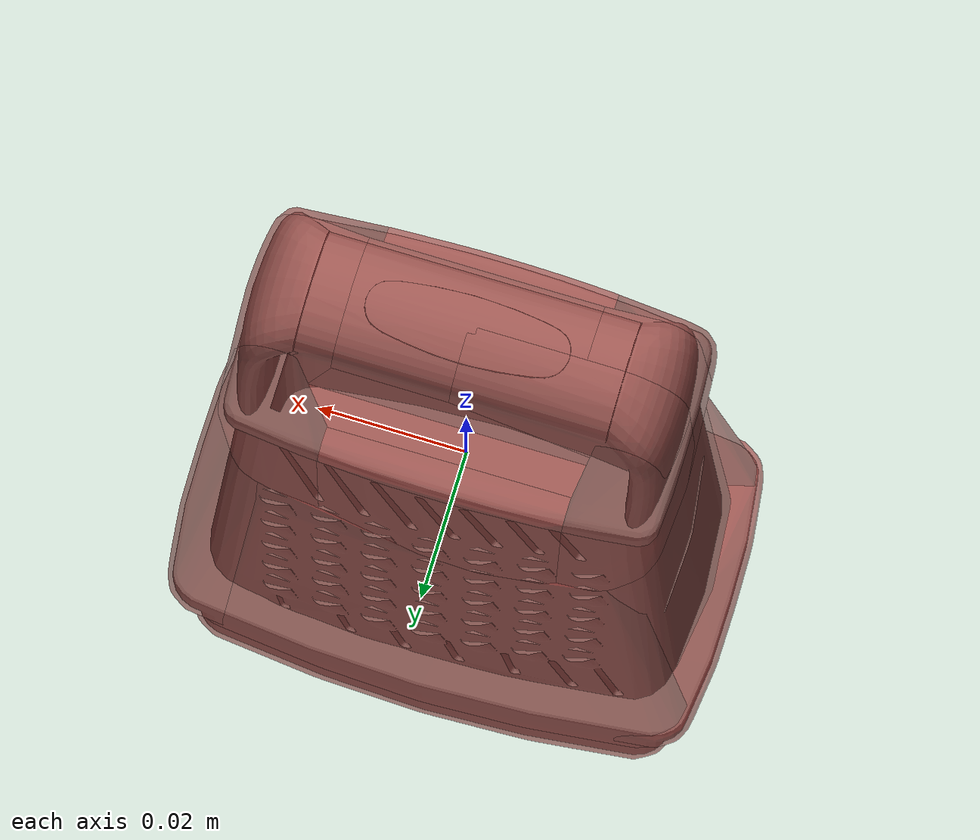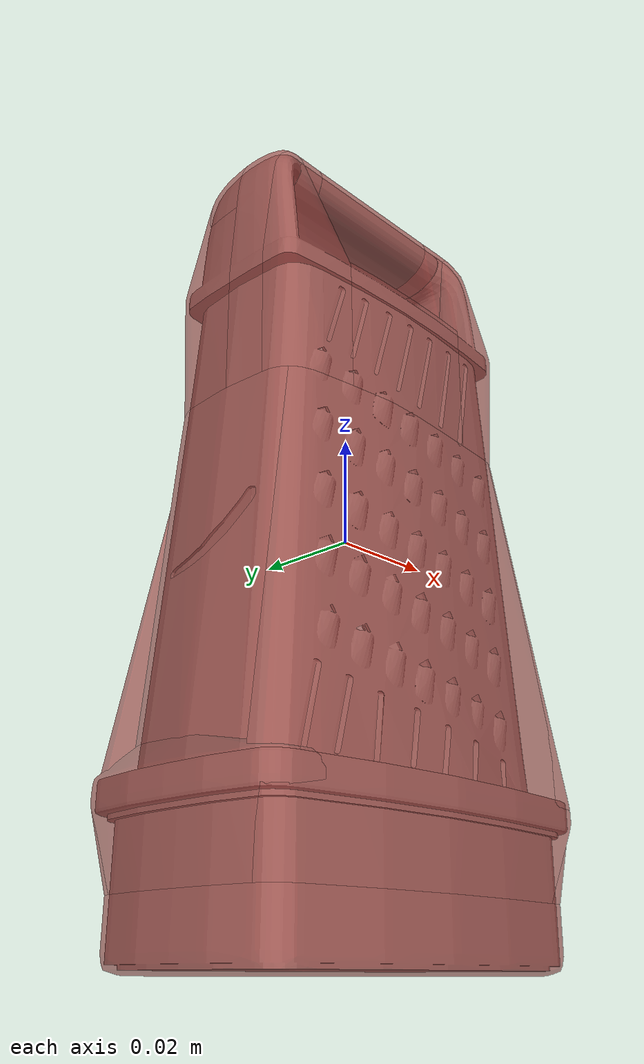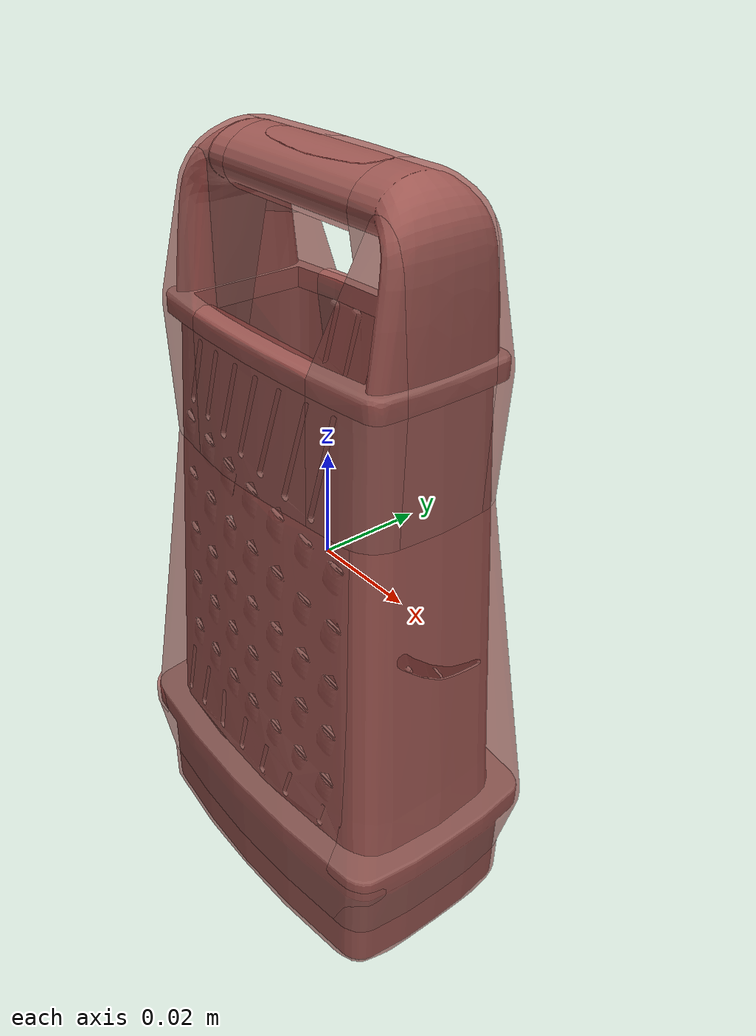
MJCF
<?xml version='1.0' encoding='utf-8'?>
<mujoco model="model">
  <option timestep="0.002" gravity="0.0 0.0 -9.81" />
  <compiler angle="radian" />
  <asset>
    <mesh file="visual/CheeseGrater001.obj" name="CheeseGrater001_vis" scale="0.5 0.5 0.5" />
    <mesh file="visual/Prop.obj" name="CheeseGrater001_Prop_vis" scale="0.5 0.5 0.5" />
    <texture file="visual/T_BC001.png" name="CheeseGrater001_material" type="2d" />
    <material name="CheeseGrater001_material" rgba="1 1 1 1.0" texture="CheeseGrater001_material" shininess="0.5" specular="0.3103448502657381" />
    <texture file="visual/T_BC001.png" name="CheeseGrater001_Prop_material" type="2d" />
    <material name="CheeseGrater001_Prop_material" rgba="1 1 1 1.0" texture="CheeseGrater001_Prop_material" shininess="0.1" specular="1" />
    <mesh file="collision/collision_mesh_collision_0.obj" name="CheeseGrater001_collision_mesh_0" scale="0.5 0.5 0.5" />
    <mesh file="collision/collision_mesh_collision_1.obj" name="CheeseGrater001_collision_mesh_1" scale="0.5 0.5 0.5" />
    <mesh file="collision/collision_mesh_collision_2.obj" name="CheeseGrater001_collision_mesh_2" scale="0.5 0.5 0.5" />
    <mesh file="collision/collision_mesh_collision_3.obj" name="CheeseGrater001_collision_mesh_3" scale="0.5 0.5 0.5" />
    <mesh file="collision/collision_mesh_collision_4.obj" name="CheeseGrater001_collision_mesh_4" scale="0.5 0.5 0.5" />
    <mesh file="collision/collision_mesh_collision_5.obj" name="CheeseGrater001_collision_mesh_5" scale="0.5 0.5 0.5" />
    <mesh file="collision/collision_mesh_collision_6.obj" name="CheeseGrater001_collision_mesh_6" scale="0.5 0.5 0.5" />
    <mesh file="collision/collision_mesh_collision_7.obj" name="CheeseGrater001_collision_mesh_7" scale="0.5 0.5 0.5" />
    <mesh file="collision/collision_mesh_collision_8.obj" name="CheeseGrater001_collision_mesh_8" scale="0.5 0.5 0.5" />
    <mesh file="collision/collision_mesh_collision_9.obj" name="CheeseGrater001_collision_mesh_9" scale="0.5 0.5 0.5" />
    <mesh file="collision/collision_mesh_collision_10.obj" name="CheeseGrater001_collision_mesh_10" scale="0.5 0.5 0.5" />
    <mesh file="collision/collision_mesh_collision_11.obj" name="CheeseGrater001_collision_mesh_11" scale="0.5 0.5 0.5" />
    <mesh file="collision/collision_mesh_collision_12.obj" name="CheeseGrater001_collision_mesh_12" scale="0.5 0.5 0.5" />
    <mesh file="collision/collision_mesh_collision_13.obj" name="CheeseGrater001_collision_mesh_13" scale="0.5 0.5 0.5" />
    <mesh file="collision/collision_mesh_collision_14.obj" name="CheeseGrater001_collision_mesh_14" scale="0.5 0.5 0.5" />
    <mesh file="collision/collision_mesh_collision_15.obj" name="CheeseGrater001_collision_mesh_15" scale="0.5 0.5 0.5" />
  </asset>
  <default>
    <default class="visual">
      <geom conaffinity="0" contype="0" group="1" type="mesh" />
    </default>
    <default class="collision">
      <geom group="0" rgba="0.5 0 0 0.5" density="1.0" solref="0.004 1" solimp="0.998 0.998 0.001" />
    </default>
    <default class="spawn">
      <geom group="0" rgba="1 1 1 0.5" contype="0" conaffinity="0" />
      <site group="0" rgba="1 1 1 0.5" />
    </default>
    <default class="region">
      <geom group="1" conaffinity="0" contype="0" rgba="0 1 0 0" mass="0" />
    </default>
  </default>
  <worldbody>
    <body>
      <body name="object">
        <geom mesh="CheeseGrater001_vis" type="mesh" solimp="0.998 0.998 0.001" solref="0.001 1" friction="0.95 0.3 0.1" class="visual" material="CheeseGrater001_material" />
        <body name="CheeseGrater001_Prop">
          <geom mesh="CheeseGrater001_Prop_vis" type="mesh" solimp="0.998 0.998 0.001" solref="0.001 1" friction="0.95 0.3 0.1" class="visual" material="CheeseGrater001_Prop_material" />
        </body>
        <geom class="region" name="reg_bbox" type="box" pos="1.8750000000192225e-07 4.749999999997811e-07 -2.2475000000000965e-05" size="0.037699617500000005 0.0240049 0.071736035" />
        <geom mesh="CheeseGrater001_collision_mesh_0" type="mesh" class="collision" />
        <geom mesh="CheeseGrater001_collision_mesh_1" type="mesh" class="collision" />
        <geom mesh="CheeseGrater001_collision_mesh_2" type="mesh" class="collision" />
        <geom mesh="CheeseGrater001_collision_mesh_3" type="mesh" class="collision" />
        <geom mesh="CheeseGrater001_collision_mesh_4" type="mesh" class="collision" />
        <geom mesh="CheeseGrater001_collision_mesh_5" type="mesh" class="collision" />
        <geom mesh="CheeseGrater001_collision_mesh_6" type="mesh" class="collision" />
        <geom mesh="CheeseGrater001_collision_mesh_7" type="mesh" class="collision" />
        <geom mesh="CheeseGrater001_collision_mesh_8" type="mesh" class="collision" />
        <geom mesh="CheeseGrater001_collision_mesh_9" type="mesh" class="collision" />
        <geom mesh="CheeseGrater001_collision_mesh_10" type="mesh" class="collision" />
        <geom mesh="CheeseGrater001_collision_mesh_11" type="mesh" class="collision" />
        <geom mesh="CheeseGrater001_collision_mesh_12" type="mesh" class="collision" />
        <geom mesh="CheeseGrater001_collision_mesh_13" type="mesh" class="collision" />
        <geom mesh="CheeseGrater001_collision_mesh_14" type="mesh" class="collision" />
        <geom mesh="CheeseGrater001_collision_mesh_15" type="mesh" class="collision" />
      </body>
    <site rgba="0 0 0 0" size="0.005" pos="0 0 -0.07175851" name="bottom_site" /><site rgba="0 0 0 0" size="0.005" pos="0 0 0.07171356" name="top_site" /><site rgba="0 0 0 0" size="0.005" pos="0.037699805 0.037699805 0" name="horizontal_radius_site" /></body>
  </worldbody>
  <actuator />
</mujoco>
